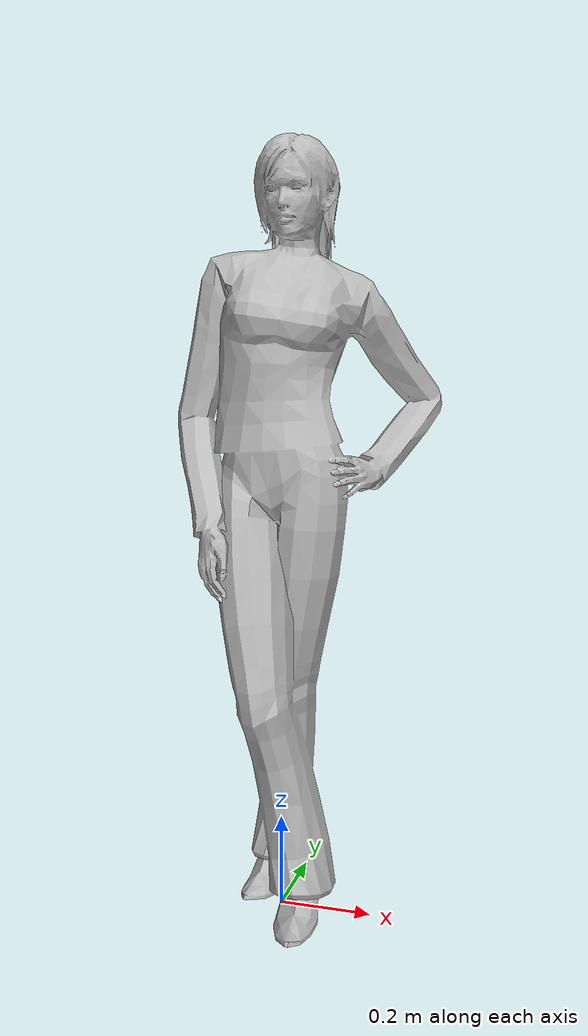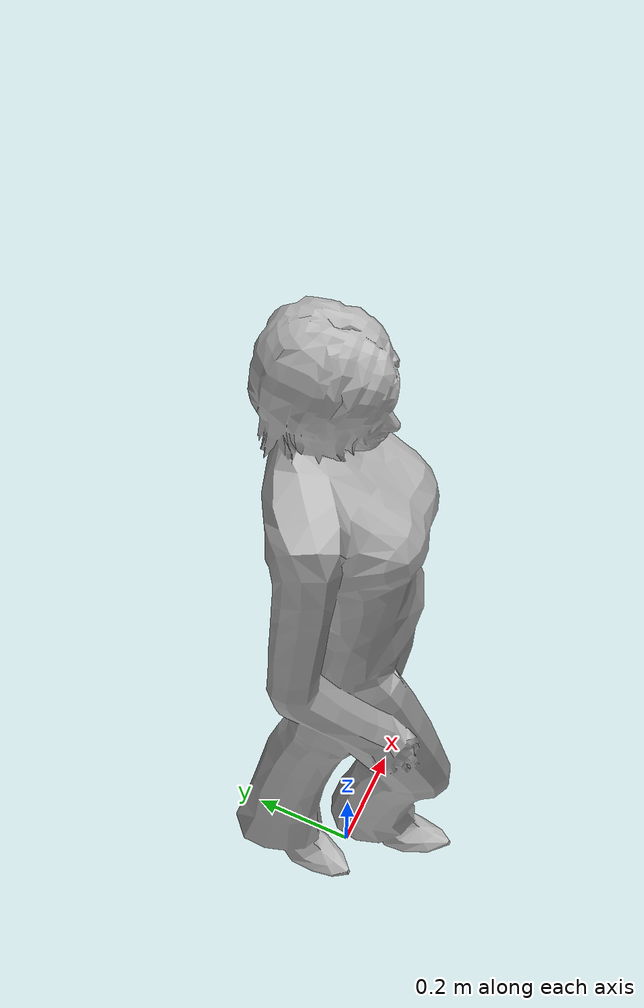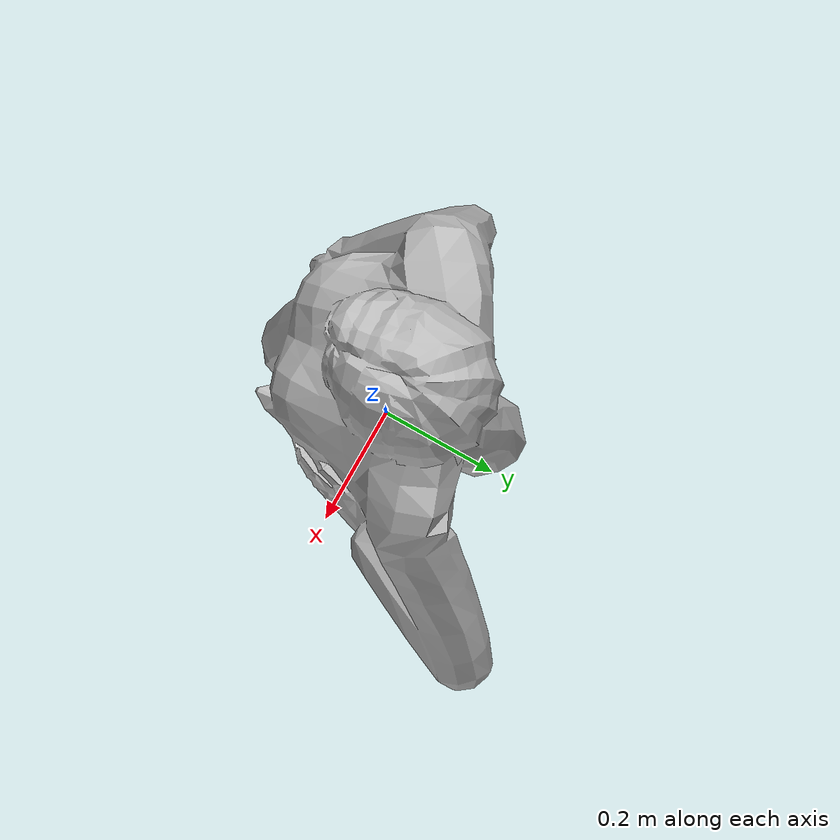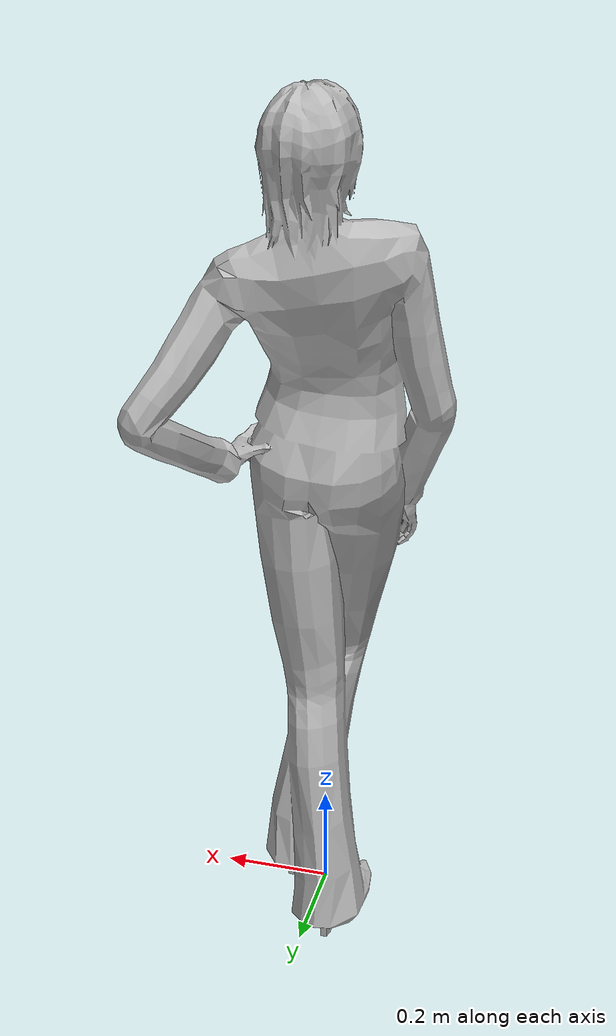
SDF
<?xml version="1.0" ?>

<sdf version="1.4">

 <model name="citizen_extras_female_03">

    <!-- V9: estático (el V8 tenía masa 20 kg con inercia 0, que DART no admite) -->
    <static>true</static>
    <link name="link">

     <inertial>

       <mass>20</mass>

       <inertia>

         <ixx>0.0</ixx>

         <ixy>0.0</ixy>

         <ixz>0.0</ixz>

         <iyy>0.0</iyy>

         <iyz>0.0</iyz>

         <izz>0.0</izz>

       </inertia>

     </inertial>

     <collision name="collision">

       <pose>0 0 0 0 0 0</pose>

       <geometry>

         <mesh>

           <uri>model://citizen_extras_female_03/meshes/mesh.dae</uri>

         </mesh>

       </geometry>

     </collision>

     <visual name="visual">

       <pose>0 0 0 0 0 0</pose>

       <geometry>

         <mesh>

           <uri>model://citizen_extras_female_03/meshes/mesh.dae</uri>

         </mesh>

       </geometry>

     </visual>

    </link>

 </model>
</sdf>
